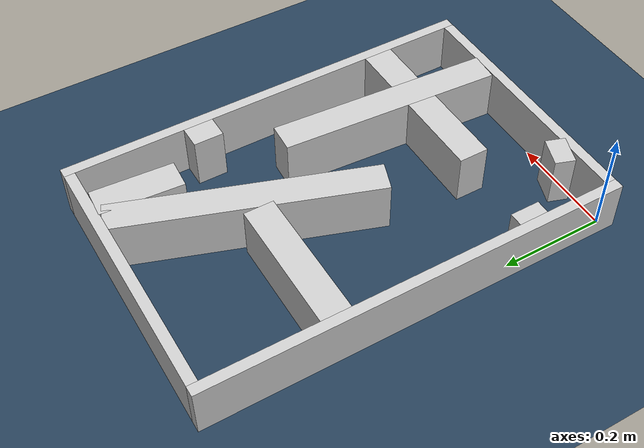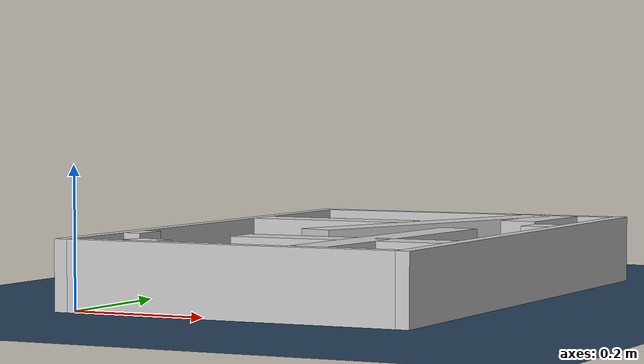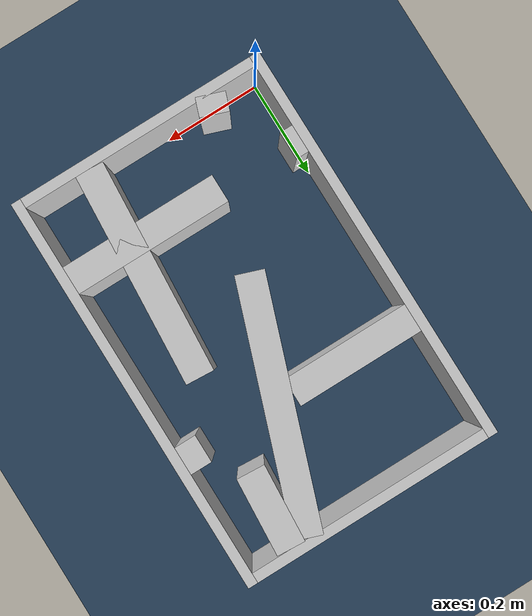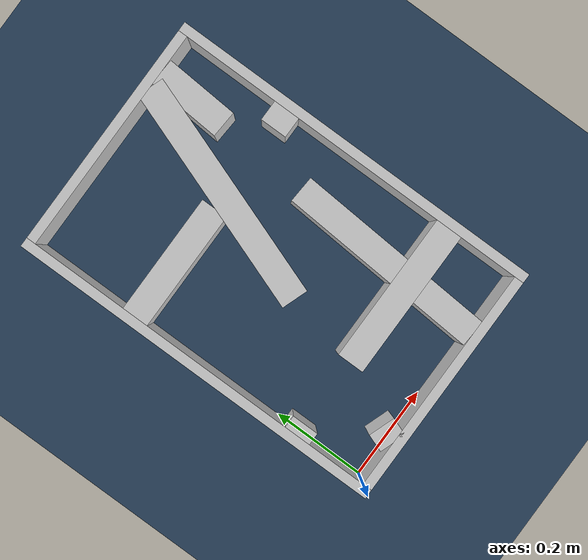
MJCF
<?xml version="1.0" ?>
<mujoco model="generated_real_template">
  <compiler angle="degree"/>
  <option timestep="0.002" integrator="implicitfast" iterations="100" cone="elliptic"/>
  <default>
    <geom density="1"/>
  </default>
  <asset>
    <texture builtin="gradient" height="3072" rgb1="0.3 0.5 0.7" rgb2="0 0 0" type="skybox" width="512"/>
    <texture builtin="checker" height="300" mark="edge" markrgb="0.8 0.8 0.8" name="groundplane" rgb1="0.2 0.3 0.4" rgb2="0.1 0.2 0.3" type="2d" width="300"/>
    <material name="groundplane" reflectance="0.2" texrepeat="5 5" texture="groundplane" texuniform="true"/>
  </asset>
  <worldbody>
    <light dir="0 0 -1" directional="true" pos="0 0 1.5"/>
    <geom name="floor" type="plane" condim="4" friction="0.5 0.005 0.001" material="groundplane" size="0 0 0.05"/>
    <body name="walls">
      <geom name="wall_boundary_left" type="box" condim="4" friction="1.0 0.005 0.0001" rgba="0.8 0.8 0.8 1" pos="-0.010000 0.387500 0.050000" euler="0 0 0.000000" size="0.010000 0.407500 0.050000"/>
      <geom name="wall_boundary_right" type="box" condim="4" friction="1.0 0.005 0.0001" rgba="0.8 0.8 0.8 1" pos="0.500000 0.387500 0.050000" euler="0 0 0.000000" size="0.010000 0.407500 0.050000"/>
      <geom name="wall_boundary_bottom" type="box" condim="4" friction="1.0 0.005 0.0001" rgba="0.8 0.8 0.8 1" pos="0.245000 -0.010000 0.050000" euler="0 0 0.000000" size="0.245000 0.010000 0.050000"/>
      <geom name="wall_boundary_top" type="box" condim="4" friction="1.0 0.005 0.0001" rgba="0.8 0.8 0.8 1" pos="0.245000 0.785000 0.050000" euler="0 0 0.000000" size="0.245000 0.010000 0.050000"/>
      <geom name="wall_inner_1_1" type="box" condim="4" friction="1.0 0.005 0.0001" rgba="0.8 0.8 0.8 1" pos="0.288999 0.543882 0.050000" euler="0 0 -109.489150" size="0.245165 0.028500 0.050000"/>
      <geom name="wall_inner_1_2" type="box" condim="4" friction="1.0 0.005 0.0001" rgba="0.8 0.8 0.8 1" pos="0.102900 0.018036 0.050000" euler="0 0 -109.489150" size="0.019133 0.028500 0.050000"/>
      <geom name="wall_inner_2_1" type="box" condim="4" friction="1.0 0.005 0.0001" rgba="0.8 0.8 0.8 1" pos="0.013126 0.155275 0.050000" euler="0 0 0.000000" size="0.013126 0.028500 0.050000"/>
      <geom name="wall_inner_2_2" type="box" condim="4" friction="1.0 0.005 0.0001" rgba="0.8 0.8 0.8 1" pos="0.330701 0.155275 0.050000" euler="0 0 0.000000" size="0.159299 0.028500 0.050000"/>
      <geom name="wall_inner_3_1" type="box" condim="4" friction="1.0 0.005 0.0001" rgba="0.8 0.8 0.8 1" pos="0.401658 0.697273 0.050000" euler="0 0 -93.784860" size="0.077897 0.028500 0.050000"/>
      <geom name="wall_inner_3_2" type="box" condim="4" friction="1.0 0.005 0.0001" rgba="0.8 0.8 0.8 1" pos="0.369676 0.213834 0.050000" euler="0 0 -93.784860" size="0.214301 0.028500 0.050000"/>
      <geom name="wall_inner_4_1" type="box" condim="4" friction="1.0 0.005 0.0001" rgba="0.8 0.8 0.8 1" pos="0.128435 0.539057 0.050000" euler="0 0 0.000000" size="0.128435 0.028500 0.050000"/>
      <geom name="wall_inner_4_2" type="box" condim="4" friction="1.0 0.005 0.0001" rgba="0.8 0.8 0.8 1" pos="0.468063 0.539057 0.050000" euler="0 0 0.000000" size="0.021937 0.028500 0.050000"/>
    </body>
  </worldbody>
</mujoco>
